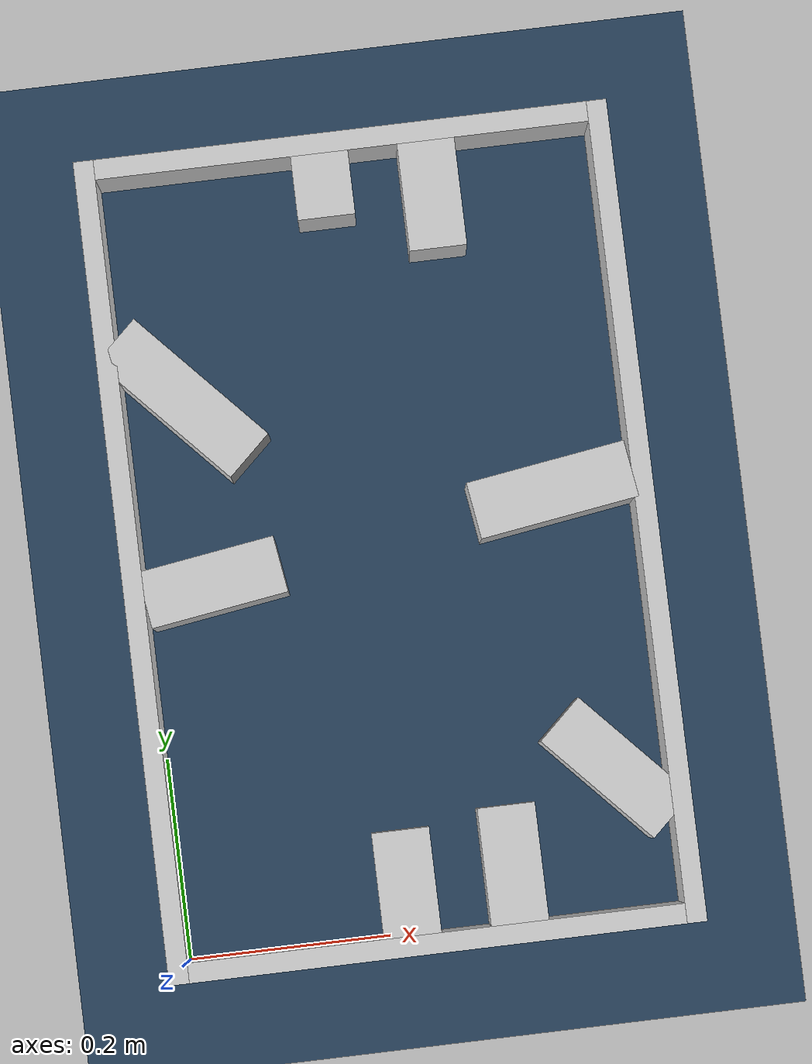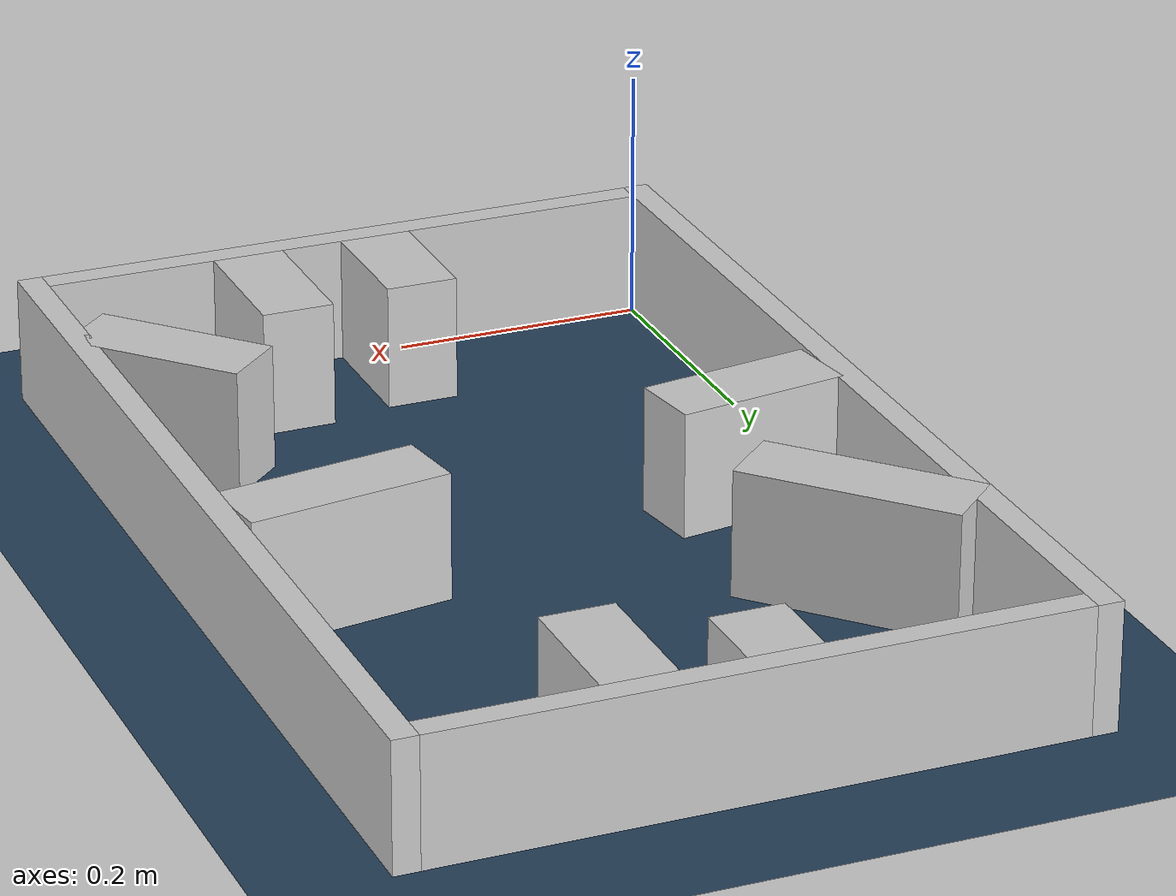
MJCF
<?xml version="1.0" ?>
<mujoco model="generated_real_template">
  <compiler angle="degree"/>
  <option timestep="0.002" integrator="implicitfast" iterations="100" cone="elliptic"/>
  <default>
    <geom density="1"/>
  </default>
  <asset>
    <texture builtin="gradient" height="3072" rgb1="0.3 0.5 0.7" rgb2="0 0 0" type="skybox" width="512"/>
    <texture builtin="checker" height="300" mark="edge" markrgb="0.8 0.8 0.8" name="groundplane" rgb1="0.2 0.3 0.4" rgb2="0.1 0.2 0.3" type="2d" width="300"/>
    <material name="groundplane" reflectance="0.2" texrepeat="5 5" texture="groundplane" texuniform="true"/>
  </asset>
  <worldbody>
    <light dir="0 0 -1" directional="true" pos="0 0 1.5"/>
    <geom name="floor" type="plane" condim="4" friction="0.5 0.005 0.001" material="groundplane" size="0 0 0.05"/>
    <body name="walls">
      <geom name="wall_boundary_left" type="box" condim="4" friction="1.0 0.005 0.0001" rgba="0.8 0.8 0.8 1" pos="-0.010000 0.387500 0.050000" euler="0 0 0.000000" size="0.010000 0.407500 0.050000"/>
      <geom name="wall_boundary_right" type="box" condim="4" friction="1.0 0.005 0.0001" rgba="0.8 0.8 0.8 1" pos="0.500000 0.387500 0.050000" euler="0 0 0.000000" size="0.010000 0.407500 0.050000"/>
      <geom name="wall_boundary_bottom" type="box" condim="4" friction="1.0 0.005 0.0001" rgba="0.8 0.8 0.8 1" pos="0.245000 -0.010000 0.050000" euler="0 0 0.000000" size="0.245000 0.010000 0.050000"/>
      <geom name="wall_boundary_top" type="box" condim="4" friction="1.0 0.005 0.0001" rgba="0.8 0.8 0.8 1" pos="0.245000 0.785000 0.050000" euler="0 0 0.000000" size="0.245000 0.010000 0.050000"/>
      <geom name="wall_inner_1_1" type="box" condim="4" friction="1.0 0.005 0.0001" rgba="0.8 0.8 0.8 1" pos="0.068375 0.367058 0.050000" euler="0 0 8.410941" size="0.069119 0.028500 0.050000"/>
      <geom name="wall_inner_1_2" type="box" condim="4" friction="1.0 0.005 0.0001" rgba="0.8 0.8 0.8 1" pos="0.410694 0.417674 0.050000" euler="0 0 8.410941" size="0.080168 0.028500 0.050000"/>
      <geom name="wall_inner_2_1" type="box" condim="4" friction="1.0 0.005 0.0001" rgba="0.8 0.8 0.8 1" pos="0.327922 0.057945 0.050000" euler="0 0 90.000000" size="0.057945 0.028500 0.050000"/>
      <geom name="wall_inner_2_2" type="box" condim="4" friction="1.0 0.005 0.0001" rgba="0.8 0.8 0.8 1" pos="0.327922 0.721507 0.050000" euler="0 0 90.000000" size="0.053493 0.028500 0.050000"/>
      <geom name="wall_inner_3_1" type="box" condim="4" friction="1.0 0.005 0.0001" rgba="0.8 0.8 0.8 1" pos="0.060001 0.550473 0.050000" euler="0 0 -47.282541" size="0.087061 0.028500 0.050000"/>
      <geom name="wall_inner_3_2" type="box" condim="4" friction="1.0 0.005 0.0001" rgba="0.8 0.8 0.8 1" pos="0.439643 0.139310 0.050000" euler="0 0 -47.282541" size="0.072845 0.028500 0.050000"/>
      <geom name="wall_inner_4_1" type="box" condim="4" friction="1.0 0.005 0.0001" rgba="0.8 0.8 0.8 1" pos="0.222164 0.052014 0.050000" euler="0 0 90.000000" size="0.052014 0.028500 0.050000"/>
      <geom name="wall_inner_4_2" type="box" condim="4" friction="1.0 0.005 0.0001" rgba="0.8 0.8 0.8 1" pos="0.222164 0.743181 0.050000" euler="0 0 90.000000" size="0.031819 0.028500 0.050000"/>
    </body>
  </worldbody>
</mujoco>
